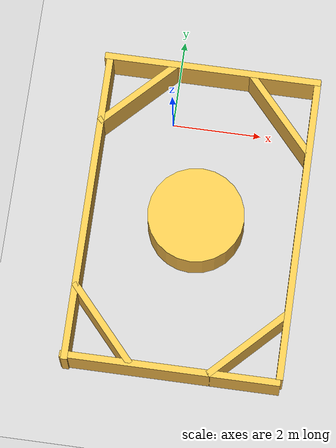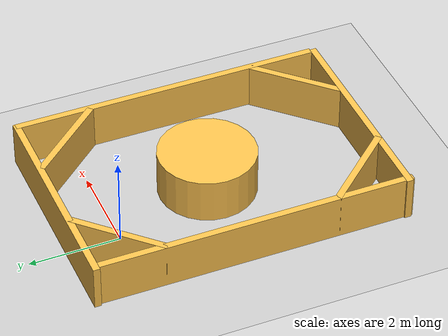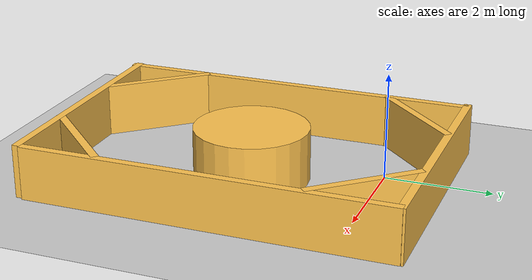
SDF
<sdf version="1.4">
 <world name="default">
  <light name="sun" type="directional">
   <pose>0 0 10 0 -0 0</pose>
   <diffuse>0.8 0.8 0.8 1</diffuse>
   <specular>0.2 0.2 0.2 1</specular>
   <attenuation>
    <range>1000</range>
    <constant>0.9</constant>
    <linear>0.01</linear>
    <quadratic>0.001</quadratic>
   </attenuation>
   <direction>0.5 0.1 -0.9</direction>
  </light>
  <model name="ground_plane">
   <static>1</static>
   <link name="link">
    <collision name="collision">
     <geometry><plane><normal>0 0 1</normal><size>100 100</size></plane></geometry>
     <surface><friction><ode><mu>100</mu><mu2>50</mu2></ode></friction></surface>
    </collision>
    <visual name="visual">
     <cast_shadows>0</cast_shadows>
     <geometry><plane><normal>0 0 1</normal><size>100 100</size></plane></geometry>
     <material>
      <script><uri>file://media/materials/scripts/gazebo.material</uri><name>Gazebo/Grey</name></script>
     </material>
    </visual>
    <velocity_decay><linear>0</linear><angular>0</angular></velocity_decay>
   </link>
  </model>
  <scene><ambient>0.4 0.4 0.4 1</ambient><background>0.7 0.7 0.7 1</background><shadows>0</shadows></scene>
  <physics type="ode">
   <max_step_size>0.01</max_step_size>
   <real_time_factor>1</real_time_factor>
   <real_time_update_rate>0</real_time_update_rate>
   <gravity>0 0 -9.8</gravity>
  </physics>
  <include><uri>model://Round_ql_1</uri><pose>0.2 -1.8 0 0 0 0</pose></include>
 </world>
</sdf>

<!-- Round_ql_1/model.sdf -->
<sdf version='1.6'>
  <model name='Round_ql_1'>
    <link name='Wall_10'>
      <pose frame=''>0.547294 2.925 0 0 -0 3.14159</pose>
      <self_collide>0</self_collide>
      <kinematic>0</kinematic>
      <inertial>
        <inertia>
          <ixx>nan</ixx>
          <ixy>0</ixy>
          <ixz>0</ixz>
          <iyy>nan</iyy>
          <iyz>0</iyz>
          <izz>nan</izz>
        </inertia>
        <mass>0</mass>
        <pose frame=''>0 0 0 0 -0 0</pose>
      </inertial>
      <visual name='Wall_10_Visual'>
        <pose frame=''>0 0 0.5 0 -0 0</pose>
        <geometry>
          <box>
            <size>4.88631 0.15 1</size>
          </box>
        </geometry>
        <material>
          <script>
            <uri>file://media/materials/scripts/gazebo.material</uri>
            <name>Gazebo/Grey</name>
          </script>
          <ambient>1 0.764706 0.305882 1</ambient>
          <shader type='pixel'/>
          <diffuse>0.7 0.7 0.7 1</diffuse>
          <specular>0.01 0.01 0.01 1</specular>
          <emissive>0 0 0 1</emissive>
        </material>
        <cast_shadows>1</cast_shadows>
        <transparency>0</transparency>
      </visual>
      <collision name='Wall_10_Collision'>
        <laser_retro>0</laser_retro>
        <max_contacts>10</max_contacts>
        <pose frame=''>0 0 0.5 0 -0 0</pose>
        <geometry>
          <box>
            <size>4.88631 0.15 1</size>
          </box>
        </geometry>
        <surface>
          <friction>
            <ode>
              <mu>1</mu>
              <mu2>1</mu2>
              <fdir1>0 0 0</fdir1>
              <slip1>0</slip1>
              <slip2>0</slip2>
            </ode>
            <torsional>
              <coefficient>1</coefficient>
              <patch_radius>0</patch_radius>
              <surface_radius>0</surface_radius>
              <use_patch_radius>1</use_patch_radius>
              <ode>
                <slip>0</slip>
              </ode>
            </torsional>
          </friction>
          <bounce>
            <restitution_coefficient>0</restitution_coefficient>
            <threshold>1e+06</threshold>
          </bounce>
          <contact>
            <collide_without_contact>0</collide_without_contact>
            <collide_without_contact_bitmask>1</collide_without_contact_bitmask>
            <collide_bitmask>1</collide_bitmask>
            <ode>
              <soft_cfm>0</soft_cfm>
              <soft_erp>0.2</soft_erp>
              <kp>1e+13</kp>
              <kd>1</kd>
              <max_vel>0.01</max_vel>
              <min_depth>0</min_depth>
            </ode>
            <bullet>
              <split_impulse>1</split_impulse>
              <split_impulse_penetration_threshold>-0.01</split_impulse_penetration_threshold>
              <soft_cfm>0</soft_cfm>
              <soft_erp>0.2</soft_erp>
              <kp>1e+13</kp>
              <kd>1</kd>
            </bullet>
          </contact>
        </surface>
      </collision>
    </link>
    <link name='Wall_11'>
      <pose frame=''>-1.7714 -0.578235 0 0 0 -1.5708</pose>
      <self_collide>0</self_collide>
      <kinematic>0</kinematic>
      <inertial>
        <inertia>
          <ixx>nan</ixx>
          <ixy>0</ixy>
          <ixz>0</ixz>
          <iyy>nan</iyy>
          <iyz>0</iyz>
          <izz>nan</izz>
        </inertia>
        <mass>0</mass>
        <pose frame=''>0 0 0 0 -0 0</pose>
      </inertial>
      <visual name='Wall_11_Visual'>
        <pose frame=''>0 0 0.5 0 -0 0</pose>
        <geometry>
          <box>
            <size>7.04488 0.15 1</size>
          </box>
        </geometry>
        <material>
          <script>
            <uri>file://media/materials/scripts/gazebo.material</uri>
            <name>Gazebo/Grey</name>
          </script>
          <ambient>1 0.764706 0.305882 1</ambient>
          <shader type='pixel'/>
          <diffuse>0.7 0.7 0.7 1</diffuse>
          <specular>0.01 0.01 0.01 1</specular>
          <emissive>0 0 0 1</emissive>
        </material>
        <cast_shadows>1</cast_shadows>
        <transparency>0</transparency>
      </visual>
      <collision name='Wall_11_Collision'>
        <laser_retro>0</laser_retro>
        <max_contacts>10</max_contacts>
        <pose frame=''>0 0 0.5 0 -0 0</pose>
        <geometry>
          <box>
            <size>7.04488 0.15 1</size>
          </box>
        </geometry>
        <surface>
          <friction>
            <ode>
              <mu>1</mu>
              <mu2>1</mu2>
              <fdir1>0 0 0</fdir1>
              <slip1>0</slip1>
              <slip2>0</slip2>
            </ode>
            <torsional>
              <coefficient>1</coefficient>
              <patch_radius>0</patch_radius>
              <surface_radius>0</surface_radius>
              <use_patch_radius>1</use_patch_radius>
              <ode>
                <slip>0</slip>
              </ode>
            </torsional>
          </friction>
          <bounce>
            <restitution_coefficient>0</restitution_coefficient>
            <threshold>1e+06</threshold>
          </bounce>
          <contact>
            <collide_without_contact>0</collide_without_contact>
            <collide_without_contact_bitmask>1</collide_without_contact_bitmask>
            <collide_bitmask>1</collide_bitmask>
            <ode>
              <soft_cfm>0</soft_cfm>
              <soft_erp>0.2</soft_erp>
              <kp>1e+13</kp>
              <kd>1</kd>
              <max_vel>0.01</max_vel>
              <min_depth>0</min_depth>
            </ode>
            <bullet>
              <split_impulse>1</split_impulse>
              <split_impulse_penetration_threshold>-0.01</split_impulse_penetration_threshold>
              <soft_cfm>0</soft_cfm>
              <soft_erp>0.2</soft_erp>
              <kp>1e+13</kp>
              <kd>1</kd>
            </bullet>
          </contact>
        </surface>
      </collision>
    </link>
    <link name='Wall_6'>
      <pose frame=''>0.535859 -3.98664 0 0 -0 0</pose>
      <self_collide>0</self_collide>
      <kinematic>0</kinematic>
      <inertial>
        <inertia>
          <ixx>nan</ixx>
          <ixy>0</ixy>
          <ixz>0</ixz>
          <iyy>nan</iyy>
          <iyz>0</iyz>
          <izz>nan</izz>
        </inertia>
        <mass>0</mass>
        <pose frame=''>0 0 0 0 -0 0</pose>
      </inertial>
      <visual name='Wall_6_Visual'>
        <pose frame=''>0 0 0.5 0 -0 0</pose>
        <geometry>
          <box>
            <size>4.83392 0.15 1</size>
          </box>
        </geometry>
        <material>
          <script>
            <uri>file://media/materials/scripts/gazebo.material</uri>
            <name>Gazebo/Grey</name>
          </script>
          <ambient>1 0.764706 0.305882 1</ambient>
          <shader type='pixel'/>
          <diffuse>0.7 0.7 0.7 1</diffuse>
          <specular>0.01 0.01 0.01 1</specular>
          <emissive>0 0 0 1</emissive>
        </material>
        <cast_shadows>1</cast_shadows>
        <transparency>0</transparency>
      </visual>
      <collision name='Wall_6_Collision'>
        <laser_retro>0</laser_retro>
        <max_contacts>10</max_contacts>
        <pose frame=''>0 0 0.5 0 -0 0</pose>
        <geometry>
          <box>
            <size>4.83392 0.15 1</size>
          </box>
        </geometry>
        <surface>
          <friction>
            <ode>
              <mu>1</mu>
              <mu2>1</mu2>
              <fdir1>0 0 0</fdir1>
              <slip1>0</slip1>
              <slip2>0</slip2>
            </ode>
            <torsional>
              <coefficient>1</coefficient>
              <patch_radius>0</patch_radius>
              <surface_radius>0</surface_radius>
              <use_patch_radius>1</use_patch_radius>
              <ode>
                <slip>0</slip>
              </ode>
            </torsional>
          </friction>
          <bounce>
            <restitution_coefficient>0</restitution_coefficient>
            <threshold>1e+06</threshold>
          </bounce>
          <contact>
            <collide_without_contact>0</collide_without_contact>
            <collide_without_contact_bitmask>1</collide_without_contact_bitmask>
            <collide_bitmask>1</collide_bitmask>
            <ode>
              <soft_cfm>0</soft_cfm>
              <soft_erp>0.2</soft_erp>
              <kp>1e+13</kp>
              <kd>1</kd>
              <max_vel>0.01</max_vel>
              <min_depth>0</min_depth>
            </ode>
            <bullet>
              <split_impulse>1</split_impulse>
              <split_impulse_penetration_threshold>-0.01</split_impulse_penetration_threshold>
              <soft_cfm>0</soft_cfm>
              <soft_erp>0.2</soft_erp>
              <kp>1e+13</kp>
              <kd>1</kd>
            </bullet>
          </contact>
        </surface>
      </collision>
    </link>
    <link name='Wall_6_clone'>
      <pose frame=''>-1.06662 -3.1882 0 0 0 -0.841822</pose>
      <inertial>
        <inertia>
          <ixx>nan</ixx>
          <ixy>0</ixy>
          <ixz>0</ixz>
          <iyy>nan</iyy>
          <iyz>0</iyz>
          <izz>nan</izz>
        </inertia>
        <mass>0</mass>
        <pose frame=''>0 0 0 0 -0 0</pose>
      </inertial>
      <self_collide>0</self_collide>
      <kinematic>0</kinematic>
      <visual name='Wall_6_Visual'>
        <pose frame=''>0 0 0.5 0 -0 0</pose>
        <geometry>
          <box>
            <size>2.17827 0.15 1</size>
          </box>
        </geometry>
        <material>
          <script>
            <uri>file://media/materials/scripts/gazebo.material</uri>
            <name>Gazebo/Grey</name>
          </script>
          <ambient>1 0.764706 0.305882 1</ambient>
          <shader type='pixel'/>
          <diffuse>0.7 0.7 0.7 1</diffuse>
          <specular>0.01 0.01 0.01 1</specular>
          <emissive>0 0 0 1</emissive>
        </material>
        <cast_shadows>1</cast_shadows>
        <transparency>0</transparency>
      </visual>
      <collision name='Wall_6_Collision'>
        <laser_retro>0</laser_retro>
        <max_contacts>10</max_contacts>
        <pose frame=''>0 0 0.5 0 -0 0</pose>
        <geometry>
          <box>
            <size>2.17827 0.15 1</size>
          </box>
        </geometry>
        <surface>
          <friction>
            <ode>
              <mu>1</mu>
              <mu2>1</mu2>
              <fdir1>0 0 0</fdir1>
              <slip1>0</slip1>
              <slip2>0</slip2>
            </ode>
            <torsional>
              <coefficient>1</coefficient>
              <patch_radius>0</patch_radius>
              <surface_radius>0</surface_radius>
              <use_patch_radius>1</use_patch_radius>
              <ode>
                <slip>0</slip>
              </ode>
            </torsional>
          </friction>
          <bounce>
            <restitution_coefficient>0</restitution_coefficient>
            <threshold>1e+06</threshold>
          </bounce>
          <contact>
            <collide_without_contact>0</collide_without_contact>
            <collide_without_contact_bitmask>1</collide_without_contact_bitmask>
            <collide_bitmask>1</collide_bitmask>
            <ode>
              <soft_cfm>0</soft_cfm>
              <soft_erp>0.2</soft_erp>
              <kp>1e+13</kp>
              <kd>1</kd>
              <max_vel>0.01</max_vel>
              <min_depth>0</min_depth>
            </ode>
            <bullet>
              <split_impulse>1</split_impulse>
              <split_impulse_penetration_threshold>-0.01</split_impulse_penetration_threshold>
              <soft_cfm>0</soft_cfm>
              <soft_erp>0.2</soft_erp>
              <kp>1e+13</kp>
              <kd>1</kd>
            </bullet>
          </contact>
        </surface>
      </collision>
    </link>
    <link name='Wall_6_clone_clone'>
      <pose frame=''>2.16841 2.08689 0 0 0 -0.841822</pose>
      <inertial>
        <inertia>
          <ixx>nan</ixx>
          <ixy>0</ixy>
          <ixz>0</ixz>
          <iyy>nan</iyy>
          <iyz>0</iyz>
          <izz>nan</izz>
        </inertia>
        <mass>0</mass>
        <pose frame=''>0 0 0 0 -0 0</pose>
      </inertial>
      <self_collide>0</self_collide>
      <kinematic>0</kinematic>
      <visual name='Wall_6_Visual'>
        <pose frame=''>0 0 0.5 0 -0 0</pose>
        <geometry>
          <box>
            <size>2.17827 0.15 1</size>
          </box>
        </geometry>
        <material>
          <script>
            <uri>file://media/materials/scripts/gazebo.material</uri>
            <name>Gazebo/Grey</name>
          </script>
          <ambient>1 0.764706 0.305882 1</ambient>
          <shader type='pixel'/>
          <diffuse>0.7 0.7 0.7 1</diffuse>
          <specular>0.01 0.01 0.01 1</specular>
          <emissive>0 0 0 1</emissive>
        </material>
        <cast_shadows>1</cast_shadows>
        <transparency>0</transparency>
      </visual>
      <collision name='Wall_6_Collision'>
        <laser_retro>0</laser_retro>
        <max_contacts>10</max_contacts>
        <pose frame=''>0 0 0.5 0 -0 0</pose>
        <geometry>
          <box>
            <size>2.17827 0.15 1</size>
          </box>
        </geometry>
        <surface>
          <friction>
            <ode>
              <mu>1</mu>
              <mu2>1</mu2>
              <fdir1>0 0 0</fdir1>
              <slip1>0</slip1>
              <slip2>0</slip2>
            </ode>
            <torsional>
              <coefficient>1</coefficient>
              <patch_radius>0</patch_radius>
              <surface_radius>0</surface_radius>
              <use_patch_radius>1</use_patch_radius>
              <ode>
                <slip>0</slip>
              </ode>
            </torsional>
          </friction>
          <bounce>
            <restitution_coefficient>0</restitution_coefficient>
            <threshold>1e+06</threshold>
          </bounce>
          <contact>
            <collide_without_contact>0</collide_without_contact>
            <collide_without_contact_bitmask>1</collide_without_contact_bitmask>
            <collide_bitmask>1</collide_bitmask>
            <ode>
              <soft_cfm>0</soft_cfm>
              <soft_erp>0.2</soft_erp>
              <kp>1e+13</kp>
              <kd>1</kd>
              <max_vel>0.01</max_vel>
              <min_depth>0</min_depth>
            </ode>
            <bullet>
              <split_impulse>1</split_impulse>
              <split_impulse_penetration_threshold>-0.01</split_impulse_penetration_threshold>
              <soft_cfm>0</soft_cfm>
              <soft_erp>0.2</soft_erp>
              <kp>1e+13</kp>
              <kd>1</kd>
            </bullet>
          </contact>
        </surface>
      </collision>
    </link>
    <link name='Wall_6_clone_clone_0'>
      <pose frame=''>-1.02986 2.14447 0 0 0 -2.34987</pose>
      <inertial>
        <inertia>
          <ixx>nan</ixx>
          <ixy>0</ixy>
          <ixz>0</ixz>
          <iyy>nan</iyy>
          <iyz>0</iyz>
          <izz>nan</izz>
        </inertia>
        <mass>0</mass>
        <pose frame=''>0 0 0 0 -0 0</pose>
      </inertial>
      <self_collide>0</self_collide>
      <kinematic>0</kinematic>
      <visual name='Wall_6_Visual'>
        <pose frame=''>0 0 0.5 0 -0 0</pose>
        <geometry>
          <box>
            <size>2.17827 0.15 1</size>
          </box>
        </geometry>
        <material>
          <script>
            <uri>file://media/materials/scripts/gazebo.material</uri>
            <name>Gazebo/Grey</name>
          </script>
          <ambient>1 0.764706 0.305882 1</ambient>
          <shader type='pixel'/>
          <diffuse>0.7 0.7 0.7 1</diffuse>
          <specular>0.01 0.01 0.01 1</specular>
          <emissive>0 0 0 1</emissive>
        </material>
        <cast_shadows>1</cast_shadows>
        <transparency>0</transparency>
      </visual>
      <collision name='Wall_6_Collision'>
        <laser_retro>0</laser_retro>
        <max_contacts>10</max_contacts>
        <pose frame=''>0 0 0.5 0 -0 0</pose>
        <geometry>
          <box>
            <size>2.17827 0.15 1</size>
          </box>
        </geometry>
        <surface>
          <friction>
            <ode>
              <mu>1</mu>
              <mu2>1</mu2>
              <fdir1>0 0 0</fdir1>
              <slip1>0</slip1>
              <slip2>0</slip2>
            </ode>
            <torsional>
              <coefficient>1</coefficient>
              <patch_radius>0</patch_radius>
              <surface_radius>0</surface_radius>
              <use_patch_radius>1</use_patch_radius>
              <ode>
                <slip>0</slip>
              </ode>
            </torsional>
          </friction>
          <bounce>
            <restitution_coefficient>0</restitution_coefficient>
            <threshold>1e+06</threshold>
          </bounce>
          <contact>
            <collide_without_contact>0</collide_without_contact>
            <collide_without_contact_bitmask>1</collide_without_contact_bitmask>
            <collide_bitmask>1</collide_bitmask>
            <ode>
              <soft_cfm>0</soft_cfm>
              <soft_erp>0.2</soft_erp>
              <kp>1e+13</kp>
              <kd>1</kd>
              <max_vel>0.01</max_vel>
              <min_depth>0</min_depth>
            </ode>
            <bullet>
              <split_impulse>1</split_impulse>
              <split_impulse_penetration_threshold>-0.01</split_impulse_penetration_threshold>
              <soft_cfm>0</soft_cfm>
              <soft_erp>0.2</soft_erp>
              <kp>1e+13</kp>
              <kd>1</kd>
            </bullet>
          </contact>
        </surface>
      </collision>
    </link>
    <link name='Wall_6_clone_clone_0_clone'>
      <pose frame=''>2.12426 -3.23876 0 0 0 -2.34987</pose>
      <inertial>
        <inertia>
          <ixx>nan</ixx>
          <ixy>0</ixy>
          <ixz>0</ixz>
          <iyy>nan</iyy>
          <iyz>0</iyz>
          <izz>nan</izz>
        </inertia>
        <mass>0</mass>
        <pose frame=''>0 0 0 0 -0 0</pose>
      </inertial>
      <self_collide>0</self_collide>
      <kinematic>0</kinematic>
      <visual name='Wall_6_Visual'>
        <pose frame=''>0 0 0.5 0 -0 0</pose>
        <geometry>
          <box>
            <size>2.17827 0.15 1</size>
          </box>
        </geometry>
        <material>
          <script>
            <uri>file://media/materials/scripts/gazebo.material</uri>
            <name>Gazebo/Grey</name>
          </script>
          <ambient>1 0.764706 0.305882 1</ambient>
          <shader type='pixel'/>
          <diffuse>0.7 0.7 0.7 1</diffuse>
          <specular>0.01 0.01 0.01 1</specular>
          <emissive>0 0 0 1</emissive>
        </material>
        <cast_shadows>1</cast_shadows>
        <transparency>0</transparency>
      </visual>
      <collision name='Wall_6_Collision'>
        <laser_retro>0</laser_retro>
        <max_contacts>10</max_contacts>
        <pose frame=''>0 0 0.5 0 -0 0</pose>
        <geometry>
          <box>
            <size>2.17827 0.15 1</size>
          </box>
        </geometry>
        <surface>
          <friction>
            <ode>
              <mu>1</mu>
              <mu2>1</mu2>
              <fdir1>0 0 0</fdir1>
              <slip1>0</slip1>
              <slip2>0</slip2>
            </ode>
            <torsional>
              <coefficient>1</coefficient>
              <patch_radius>0</patch_radius>
              <surface_radius>0</surface_radius>
              <use_patch_radius>1</use_patch_radius>
              <ode>
                <slip>0</slip>
              </ode>
            </torsional>
          </friction>
          <bounce>
            <restitution_coefficient>0</restitution_coefficient>
            <threshold>1e+06</threshold>
          </bounce>
          <contact>
            <collide_without_contact>0</collide_without_contact>
            <collide_without_contact_bitmask>1</collide_without_contact_bitmask>
            <collide_bitmask>1</collide_bitmask>
            <ode>
              <soft_cfm>0</soft_cfm>
              <soft_erp>0.2</soft_erp>
              <kp>1e+13</kp>
              <kd>1</kd>
              <max_vel>0.01</max_vel>
              <min_depth>0</min_depth>
            </ode>
            <bullet>
              <split_impulse>1</split_impulse>
              <split_impulse_penetration_threshold>-0.01</split_impulse_penetration_threshold>
              <soft_cfm>0</soft_cfm>
              <soft_erp>0.2</soft_erp>
              <kp>1e+13</kp>
              <kd>1</kd>
            </bullet>
          </contact>
        </surface>
      </collision>
    </link>
    <link name='Wall_7'>
      <pose frame=''>2.9235 -0.48245 0 0 -0 1.5708</pose>
      <self_collide>0</self_collide>
      <kinematic>0</kinematic>
      <inertial>
        <inertia>
          <ixx>nan</ixx>
          <ixy>0</ixy>
          <ixz>0</ixz>
          <iyy>nan</iyy>
          <iyz>0</iyz>
          <izz>nan</izz>
        </inertia>
        <mass>0</mass>
        <pose frame=''>0 0 0 0 -0 0</pose>
      </inertial>
      <visual name='Wall_7_Visual'>
        <pose frame=''>0 0 0.5 0 -0 0</pose>
        <geometry>
          <box>
            <size>6.87454 0.15 1</size>
          </box>
        </geometry>
        <material>
          <script>
            <uri>file://media/materials/scripts/gazebo.material</uri>
            <name>Gazebo/Grey</name>
          </script>
          <ambient>1 0.764706 0.305882 1</ambient>
          <shader type='pixel'/>
          <diffuse>0.7 0.7 0.7 1</diffuse>
          <specular>0.01 0.01 0.01 1</specular>
          <emissive>0 0 0 1</emissive>
        </material>
        <cast_shadows>1</cast_shadows>
        <transparency>0</transparency>
      </visual>
      <collision name='Wall_7_Collision'>
        <laser_retro>0</laser_retro>
        <max_contacts>10</max_contacts>
        <pose frame=''>0 0 0.5 0 -0 0</pose>
        <geometry>
          <box>
            <size>6.87454 0.15 1</size>
          </box>
        </geometry>
        <surface>
          <friction>
            <ode>
              <mu>1</mu>
              <mu2>1</mu2>
              <fdir1>0 0 0</fdir1>
              <slip1>0</slip1>
              <slip2>0</slip2>
            </ode>
            <torsional>
              <coefficient>1</coefficient>
              <patch_radius>0</patch_radius>
              <surface_radius>0</surface_radius>
              <use_patch_radius>1</use_patch_radius>
              <ode>
                <slip>0</slip>
              </ode>
            </torsional>
          </friction>
          <bounce>
            <restitution_coefficient>0</restitution_coefficient>
            <threshold>1e+06</threshold>
          </bounce>
          <contact>
            <collide_without_contact>0</collide_without_contact>
            <collide_without_contact_bitmask>1</collide_without_contact_bitmask>
            <collide_bitmask>1</collide_bitmask>
            <ode>
              <soft_cfm>0</soft_cfm>
              <soft_erp>0.2</soft_erp>
              <kp>1e+13</kp>
              <kd>1</kd>
              <max_vel>0.01</max_vel>
              <min_depth>0</min_depth>
            </ode>
            <bullet>
              <split_impulse>1</split_impulse>
              <split_impulse_penetration_threshold>-0.01</split_impulse_penetration_threshold>
              <soft_cfm>0</soft_cfm>
              <soft_erp>0.2</soft_erp>
              <kp>1e+13</kp>
              <kd>1</kd>
            </bullet>
          </contact>
        </surface>
      </collision>
    </link>
    <link name='link_0'>
      <pose frame=''>0.633401 -0.492011 0.5 0 -0 0</pose>
      <inertial>
        <mass>4.60629</mass>
        <inertia>
          <ixx>1.70998</ixx>
          <ixy>0</ixy>
          <ixz>0</ixz>
          <iyy>1.70998</iyy>
          <iyz>0</iyz>
          <izz>2.65224</izz>
        </inertia>
        <pose frame=''>0 0 0 0 -0 0</pose>
      </inertial>
      <visual name='visual'>
        <pose frame=''>0 0 0 0 -0 0</pose>
        <geometry>
          <cylinder>
            <radius>1.07312</radius>
            <length>1</length>
          </cylinder>
        </geometry>
        <material>
          <script>
            <uri>file://media/materials/scripts/gazebo.material</uri>
            <name>Gazebo/Grey</name>
          </script>
          <ambient>1 0.764706 0.305882 1</ambient>
          <shader type='pixel'/>
          <diffuse>0.7 0.7 0.7 1</diffuse>
          <specular>0.01 0.01 0.01 1</specular>
          <emissive>0 0 0 1</emissive>
        </material>
        <cast_shadows>1</cast_shadows>
        <transparency>0</transparency>
      </visual>
      <collision name='collision'>
        <laser_retro>0</laser_retro>
        <max_contacts>10</max_contacts>
        <pose frame=''>0 0 0 0 -0 0</pose>
        <geometry>
          <cylinder>
            <radius>1.07312</radius>
            <length>1</length>
          </cylinder>
        </geometry>
        <surface>
          <friction>
            <ode>
              <mu>1</mu>
              <mu2>1</mu2>
              <fdir1>0 0 0</fdir1>
              <slip1>0</slip1>
              <slip2>0</slip2>
            </ode>
            <torsional>
              <coefficient>1</coefficient>
              <patch_radius>0</patch_radius>
              <surface_radius>0</surface_radius>
              <use_patch_radius>1</use_patch_radius>
              <ode>
                <slip>0</slip>
              </ode>
            </torsional>
          </friction>
          <bounce>
            <restitution_coefficient>0</restitution_coefficient>
            <threshold>1e+06</threshold>
          </bounce>
          <contact>
            <collide_without_contact>0</collide_without_contact>
            <collide_without_contact_bitmask>1</collide_without_contact_bitmask>
            <collide_bitmask>1</collide_bitmask>
            <ode>
              <soft_cfm>0</soft_cfm>
              <soft_erp>0.2</soft_erp>
              <kp>1e+13</kp>
              <kd>1</kd>
              <max_vel>0.01</max_vel>
              <min_depth>0</min_depth>
            </ode>
            <bullet>
              <split_impulse>1</split_impulse>
              <split_impulse_penetration_threshold>-0.01</split_impulse_penetration_threshold>
              <soft_cfm>0</soft_cfm>
              <soft_erp>0.2</soft_erp>
              <kp>1e+13</kp>
              <kd>1</kd>
            </bullet>
          </contact>
        </surface>
      </collision>
    </link>
    <static>1</static>
    <allow_auto_disable>1</allow_auto_disable>
  </model>
</sdf>
